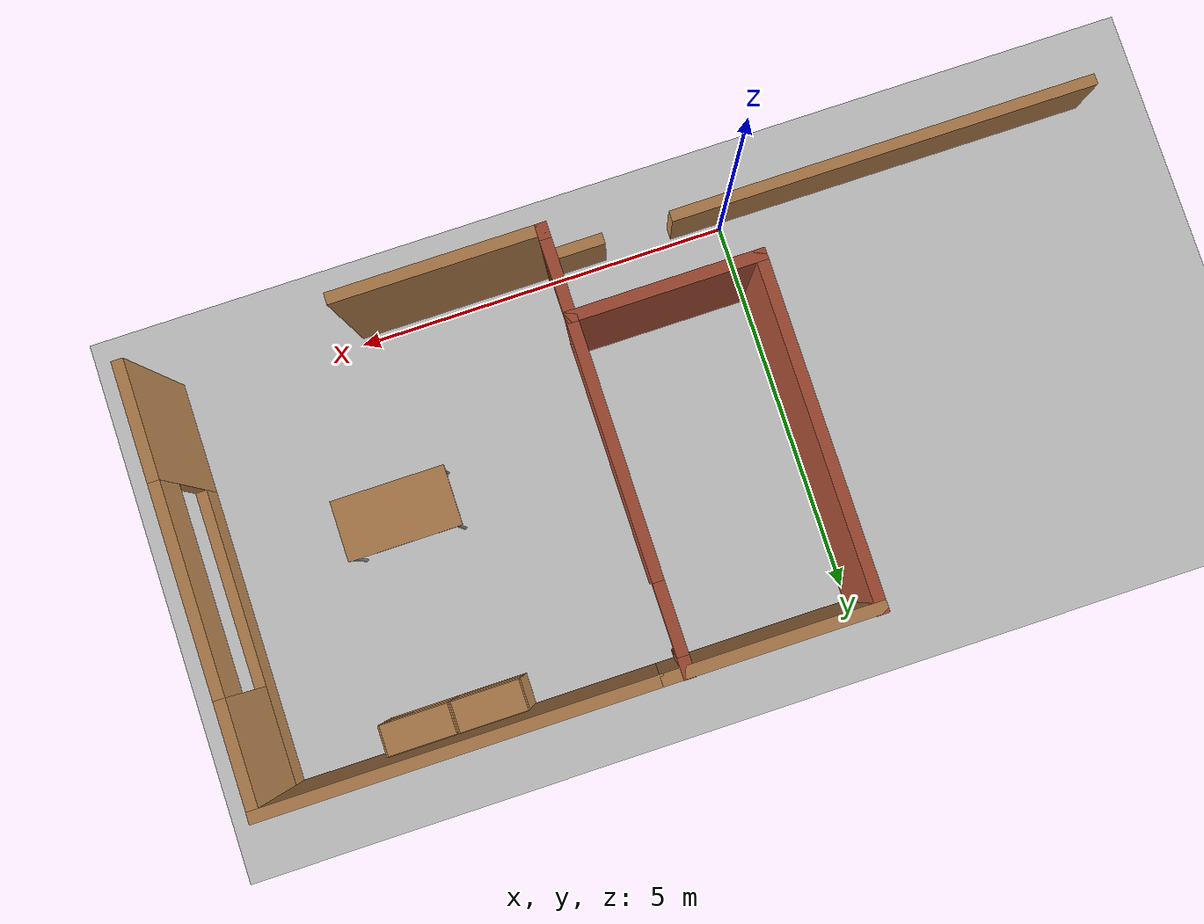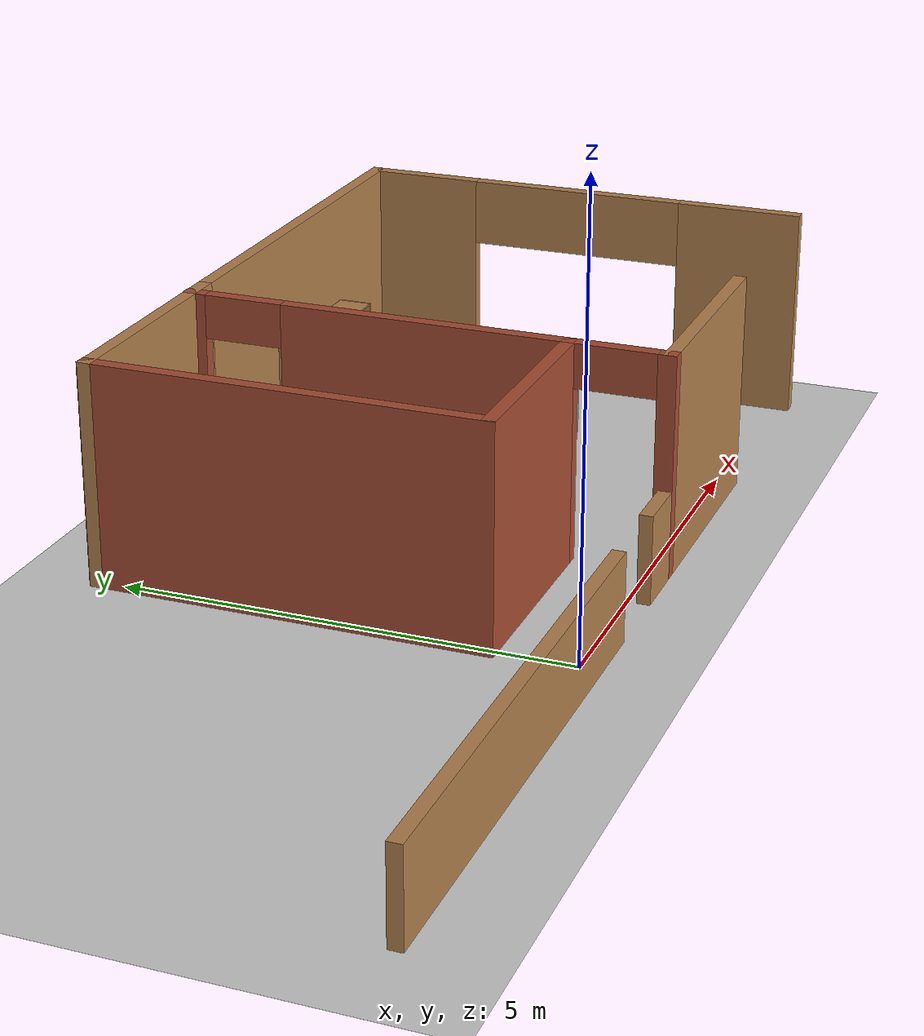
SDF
<sdf version="1.6">
 <world name="default">
  <model name="ground_plane">
   <static>1</static>
   <link name="link">
    <collision name="collision">
     <geometry><plane><normal>0 0 1</normal><size>100 100</size></plane></geometry>
     <surface>
      <contact><collide_bitmask>65535</collide_bitmask></contact>
      <friction><ode><mu>100</mu><mu2>50</mu2></ode></friction>
     </surface>
    </collision>
    <visual name="visual">
     <cast_shadows>0</cast_shadows>
     <geometry><plane><normal>0 0 1</normal><size>100 100</size></plane></geometry>
     <material>
      <script><uri>file://media/materials/scripts/gazebo.material</uri><name>Gazebo/Grey</name></script>
     </material>
    </visual>
   </link>
  </model>
  <model name="turtlebot3_house">
   <pose>0.006915 0.007382 0 0 -0 0</pose>
   <link name="Wall_101">
    <pose>-0.05 3.1 0 0 0 -1.5708</pose>
    <visual name="Wall_101_Visual">
     <pose>0 0 1.25 0 -0 0</pose>
     <geometry><box><size>4.5 0.15 2.5</size></box></geometry>
     <material>
      <script><uri>file://media/materials/scripts/gazebo.material</uri><name>Gazebo/Bricks</name></script>
      <ambient>1 1 1 1</ambient>
      <diffuse>1 1 1 1</diffuse>
      <specular>0.2 0.2 0.2 1</specular>
      <emissive>0 0 0 1</emissive>
     </material>
    </visual>
    <collision name="Wall_101_Collision">
     <pose>0 0 1.25 0 -0 0</pose>
     <geometry><box><size>4.5 0.15 2.5</size></box></geometry>
     <surface>
      <friction>
       <ode><mu>1</mu><mu2>1</mu2><fdir1>0 0 0</fdir1><slip1>0</slip1><slip2>0</slip2></ode>
       <torsional>
        <coefficient>1</coefficient>
        <patch_radius>0</patch_radius>
        <surface_radius>0</surface_radius>
        <use_patch_radius>1</use_patch_radius>
        <ode><slip>0</slip></ode>
       </torsional>
      </friction>
      <bounce><restitution_coefficient>0</restitution_coefficient><threshold>1e+06</threshold></bounce>
      <contact>
       <collide_without_contact>0</collide_without_contact>
       <collide_without_contact_bitmask>1</collide_without_contact_bitmask>
       <collide_bitmask>1</collide_bitmask>
       <ode>
        <soft_cfm>0</soft_cfm>
        <soft_erp>0.2</soft_erp>
        <kp>1e+13</kp>
        <kd>1</kd>
        <max_vel>0.01</max_vel>
        <min_depth>0</min_depth>
       </ode>
       <bullet>
        <split_impulse>1</split_impulse>
        <split_impulse_penetration_threshold>-0.01</split_impulse_penetration_threshold>
        <soft_cfm>0</soft_cfm>
        <soft_erp>0.2</soft_erp>
        <kp>1e+13</kp>
        <kd>1</kd>
       </bullet>
      </contact>
     </surface>
    </collision>
   </link>
   <link name="Wall_104">
    <pose>2.3 3.1 0 0 -0 1.5708</pose>
    <visual name="Wall_104_Visual_1">
     <pose>2.11625 0 1.25 0 -0 0</pose>
     <geometry><box><size>0.267504 0.15 2.5</size></box></geometry>
     <material>
      <script><uri>file://media/materials/scripts/gazebo.material</uri><name>Gazebo/Bricks</name></script>
      <ambient>1 1 1 1</ambient>
      <diffuse>1 1 1 1</diffuse>
      <specular>0.2 0.2 0.2 1</specular>
      <emissive>0 0 0 1</emissive>
     </material>
    </visual>
    <visual name="Wall_104_Visual_2">
     <pose>1.5325 0 2.25 0 -0 0</pose>
     <geometry><box><size>0.9 0.15 0.5</size></box></geometry>
     <material>
      <script><uri>file://media/materials/scripts/gazebo.material</uri><name>Gazebo/Bricks</name></script>
      <ambient>1 1 1 1</ambient>
      <diffuse>1 1 1 1</diffuse>
      <specular>0.2 0.2 0.2 1</specular>
      <emissive>0 0 0 1</emissive>
     </material>
    </visual>
    <visual name="Wall_104_Visual_0">
     <pose>-0.583752 0 1.25 0 -0 0</pose>
     <geometry><box><size>3.3325 0.15 2.5</size></box></geometry>
     <material>
      <script><uri>file://media/materials/scripts/gazebo.material</uri><name>Gazebo/Bricks</name></script>
      <ambient>1 1 1 1</ambient>
      <diffuse>1 1 1 1</diffuse>
      <specular>0.2 0.2 0.2 1</specular>
      <emissive>0 0 0 1</emissive>
     </material>
    </visual>
    <collision name="Wall_104_Collision_1">
     <pose>2.11625 0 1.25 0 -0 0</pose>
     <geometry><box><size>0.267504 0.15 2.5</size></box></geometry>
     <surface>
      <friction>
       <ode><mu>1</mu><mu2>1</mu2><fdir1>0 0 0</fdir1><slip1>0</slip1><slip2>0</slip2></ode>
       <torsional>
        <coefficient>1</coefficient>
        <patch_radius>0</patch_radius>
        <surface_radius>0</surface_radius>
        <use_patch_radius>1</use_patch_radius>
        <ode><slip>0</slip></ode>
       </torsional>
      </friction>
      <bounce><restitution_coefficient>0</restitution_coefficient><threshold>1e+06</threshold></bounce>
      <contact>
       <collide_without_contact>0</collide_without_contact>
       <collide_without_contact_bitmask>1</collide_without_contact_bitmask>
       <collide_bitmask>1</collide_bitmask>
       <ode>
        <soft_cfm>0</soft_cfm>
        <soft_erp>0.2</soft_erp>
        <kp>1e+13</kp>
        <kd>1</kd>
        <max_vel>0.01</max_vel>
        <min_depth>0</min_depth>
       </ode>
       <bullet>
        <split_impulse>1</split_impulse>
        <split_impulse_penetration_threshold>-0.01</split_impulse_penetration_threshold>
        <soft_cfm>0</soft_cfm>
        <soft_erp>0.2</soft_erp>
        <kp>1e+13</kp>
        <kd>1</kd>
       </bullet>
      </contact>
     </surface>
    </collision>
    <collision name="Wall_104_Collision_2">
     <pose>1.5325 0 2.25 0 -0 0</pose>
     <geometry><box><size>0.9 0.15 0.5</size></box></geometry>
     <surface>
      <friction>
       <ode><mu>1</mu><mu2>1</mu2><fdir1>0 0 0</fdir1><slip1>0</slip1><slip2>0</slip2></ode>
       <torsional>
        <coefficient>1</coefficient>
        <patch_radius>0</patch_radius>
        <surface_radius>0</surface_radius>
        <use_patch_radius>1</use_patch_radius>
        <ode><slip>0</slip></ode>
       </torsional>
      </friction>
      <bounce><restitution_coefficient>0</restitution_coefficient><threshold>1e+06</threshold></bounce>
      <contact>
       <collide_without_contact>0</collide_without_contact>
       <collide_without_contact_bitmask>1</collide_without_contact_bitmask>
       <collide_bitmask>1</collide_bitmask>
       <ode>
        <soft_cfm>0</soft_cfm>
        <soft_erp>0.2</soft_erp>
        <kp>1e+13</kp>
        <kd>1</kd>
        <max_vel>0.01</max_vel>
        <min_depth>0</min_depth>
       </ode>
       <bullet>
        <split_impulse>1</split_impulse>
        <split_impulse_penetration_threshold>-0.01</split_impulse_penetration_threshold>
        <soft_cfm>0</soft_cfm>
        <soft_erp>0.2</soft_erp>
        <kp>1e+13</kp>
        <kd>1</kd>
       </bullet>
      </contact>
     </surface>
    </collision>
    <collision name="Wall_104_Collision_0">
     <pose>-0.583752 0 1.25 0 -0 0</pose>
     <geometry><box><size>3.3325 0.15 2.5</size></box></geometry>
     <surface>
      <friction>
       <ode><mu>1</mu><mu2>1</mu2><fdir1>0 0 0</fdir1><slip1>0</slip1><slip2>0</slip2></ode>
       <torsional>
        <coefficient>1</coefficient>
        <patch_radius>0</patch_radius>
        <surface_radius>0</surface_radius>
        <use_patch_radius>1</use_patch_radius>
        <ode><slip>0</slip></ode>
       </torsional>
      </friction>
      <bounce><restitution_coefficient>0</restitution_coefficient><threshold>1e+06</threshold></bounce>
      <contact>
       <collide_without_contact>0</collide_without_contact>
       <collide_without_contact_bitmask>1</collide_without_contact_bitmask>
       <collide_bitmask>1</collide_bitmask>
       <ode>
        <soft_cfm>0</soft_cfm>
        <soft_erp>0.2</soft_erp>
        <kp>1e+13</kp>
        <kd>1</kd>
        <max_vel>0.01</max_vel>
        <min_depth>0</min_depth>
       </ode>
       <bullet>
        <split_impulse>1</split_impulse>
        <split_impulse_penetration_threshold>-0.01</split_impulse_penetration_threshold>
        <soft_cfm>0</soft_cfm>
        <soft_erp>0.2</soft_erp>
        <kp>1e+13</kp>
        <kd>1</kd>
       </bullet>
      </contact>
     </surface>
    </collision>
   </link>
   <link name="Wall_108">
    <pose>-1.37512 -0.17488 0 0 -0 0</pose>
    <visual name="Wall_108_Visual_0">
     <pose>-0.856324 0 0.5 0 -0 0</pose>
     <geometry><box><size>5.78735 0.15 1</size></box></geometry>
     <material>
      <script><uri>file://media/materials/scripts/gazebo.material</uri><name>Gazebo/Wood</name></script>
      <ambient>1 1 1 1</ambient>
      <diffuse>1 1 1 1</diffuse>
      <specular>0.2 0.2 0.2 1</specular>
      <emissive>0 0 0 1</emissive>
     </material>
    </visual>
    <visual name="Wall_108_Visual_1">
     <pose>3.34368 0 0.5 0 -0 0</pose>
     <geometry><box><size>0.812647 0.15 1</size></box></geometry>
     <material>
      <script><uri>file://media/materials/scripts/gazebo.material</uri><name>Gazebo/Wood</name></script>
      <ambient>1 1 1 1</ambient>
      <diffuse>1 1 1 1</diffuse>
      <specular>0.2 0.2 0.2 1</specular>
      <emissive>0 0 0 1</emissive>
     </material>
    </visual>
    <collision name="Wall_108_Collision_1">
     <pose>3.34368 0 0.5 0 -0 0</pose>
     <geometry><box><size>0.812647 0.15 1</size></box></geometry>
     <surface>
      <friction>
       <ode><mu>1</mu><mu2>1</mu2><fdir1>0 0 0</fdir1><slip1>0</slip1><slip2>0</slip2></ode>
       <torsional>
        <coefficient>1</coefficient>
        <patch_radius>0</patch_radius>
        <surface_radius>0</surface_radius>
        <use_patch_radius>1</use_patch_radius>
        <ode><slip>0</slip></ode>
       </torsional>
      </friction>
      <bounce><restitution_coefficient>0</restitution_coefficient><threshold>1e+06</threshold></bounce>
      <contact>
       <collide_without_contact>0</collide_without_contact>
       <collide_without_contact_bitmask>1</collide_without_contact_bitmask>
       <collide_bitmask>1</collide_bitmask>
       <ode>
        <soft_cfm>0</soft_cfm>
        <soft_erp>0.2</soft_erp>
        <kp>1e+13</kp>
        <kd>1</kd>
        <max_vel>0.01</max_vel>
        <min_depth>0</min_depth>
       </ode>
       <bullet>
        <split_impulse>1</split_impulse>
        <split_impulse_penetration_threshold>-0.01</split_impulse_penetration_threshold>
        <soft_cfm>0</soft_cfm>
        <soft_erp>0.2</soft_erp>
        <kp>1e+13</kp>
        <kd>1</kd>
       </bullet>
      </contact>
     </surface>
    </collision>
    <collision name="Wall_108_Collision_0">
     <pose>-0.856324 0 0.5 0 -0 0</pose>
     <geometry><box><size>5.78735 0.15 1</size></box></geometry>
     <surface>
      <friction>
       <ode><mu>1</mu><mu2>1</mu2><fdir1>0 0 0</fdir1><slip1>0</slip1><slip2>0</slip2></ode>
       <torsional>
        <coefficient>1</coefficient>
        <patch_radius>0</patch_radius>
        <surface_radius>0</surface_radius>
        <use_patch_radius>1</use_patch_radius>
        <ode><slip>0</slip></ode>
       </torsional>
      </friction>
      <bounce><restitution_coefficient>0</restitution_coefficient><threshold>1e+06</threshold></bounce>
      <contact>
       <collide_without_contact>0</collide_without_contact>
       <collide_without_contact_bitmask>1</collide_without_contact_bitmask>
       <collide_bitmask>1</collide_bitmask>
       <ode>
        <soft_cfm>0</soft_cfm>
        <soft_erp>0.2</soft_erp>
        <kp>1e+13</kp>
        <kd>1</kd>
        <max_vel>0.01</max_vel>
        <min_depth>0</min_depth>
       </ode>
       <bullet>
        <split_impulse>1</split_impulse>
        <split_impulse_penetration_threshold>-0.01</split_impulse_penetration_threshold>
        <soft_cfm>0</soft_cfm>
        <soft_erp>0.2</soft_erp>
        <kp>1e+13</kp>
        <kd>1</kd>
       </bullet>
      </contact>
     </surface>
    </collision>
   </link>
   <link name="Wall_81">
    <pose>5.07752 5.2688 0 0 -0 3.14159</pose>
    <visual name="Wall_81_Visual">
     <pose>0 0 1.25 0 -0 0</pose>
     <geometry><box><size>5 0.15 2.5</size></box></geometry>
     <material>
      <script><uri>file://media/materials/scripts/gazebo.material</uri><name>Gazebo/Wood</name></script>
      <ambient>1 1 1 1</ambient>
      <diffuse>1 1 1 1</diffuse>
      <specular>0.2 0.2 0.2 1</specular>
      <emissive>0 0 0 1</emissive>
     </material>
    </visual>
    <collision name="Wall_81_Collision">
     <pose>0 0 1.25 0 -0 0</pose>
     <geometry><box><size>5 0.15 2.5</size></box></geometry>
     <surface>
      <friction>
       <ode><mu>1</mu><mu2>1</mu2><fdir1>0 0 0</fdir1><slip1>0</slip1><slip2>0</slip2></ode>
       <torsional>
        <coefficient>1</coefficient>
        <patch_radius>0</patch_radius>
        <surface_radius>0</surface_radius>
        <use_patch_radius>1</use_patch_radius>
        <ode><slip>0</slip></ode>
       </torsional>
      </friction>
      <bounce><restitution_coefficient>0</restitution_coefficient><threshold>1e+06</threshold></bounce>
      <contact>
       <collide_without_contact>0</collide_without_contact>
       <collide_without_contact_bitmask>1</collide_without_contact_bitmask>
       <collide_bitmask>1</collide_bitmask>
       <ode>
        <soft_cfm>0</soft_cfm>
        <soft_erp>0.2</soft_erp>
        <kp>1e+13</kp>
        <kd>1</kd>
        <max_vel>0.01</max_vel>
        <min_depth>0</min_depth>
       </ode>
       <bullet>
        <split_impulse>1</split_impulse>
        <split_impulse_penetration_threshold>-0.01</split_impulse_penetration_threshold>
        <soft_cfm>0</soft_cfm>
        <soft_erp>0.2</soft_erp>
        <kp>1e+13</kp>
        <kd>1</kd>
       </bullet>
      </contact>
     </surface>
    </collision>
   </link>
   <link name="Wall_82">
    <pose>1.25 5.26876 0 0 -0 3.14159</pose>
    <visual name="Wall_82_Visual">
     <pose>0 0 1.25 0 -0 0</pose>
     <geometry><box><size>2.75 0.15 2.5</size></box></geometry>
     <material>
      <script><uri>file://media/materials/scripts/gazebo.material</uri><name>Gazebo/Wood</name></script>
      <ambient>1 1 1 1</ambient>
      <diffuse>1 1 1 1</diffuse>
      <specular>0.2 0.2 0.2 1</specular>
      <emissive>0 0 0 1</emissive>
     </material>
    </visual>
    <collision name="Wall_82_Collision">
     <pose>0 0 1.25 0 -0 0</pose>
     <geometry><box><size>2.75 0.15 2.5</size></box></geometry>
     <surface>
      <friction>
       <ode><mu>1</mu><mu2>1</mu2><fdir1>0 0 0</fdir1><slip1>0</slip1><slip2>0</slip2></ode>
       <torsional>
        <coefficient>1</coefficient>
        <patch_radius>0</patch_radius>
        <surface_radius>0</surface_radius>
        <use_patch_radius>1</use_patch_radius>
        <ode><slip>0</slip></ode>
       </torsional>
      </friction>
      <bounce><restitution_coefficient>0</restitution_coefficient><threshold>1e+06</threshold></bounce>
      <contact>
       <collide_without_contact>0</collide_without_contact>
       <collide_without_contact_bitmask>1</collide_without_contact_bitmask>
       <collide_bitmask>1</collide_bitmask>
       <ode>
        <soft_cfm>0</soft_cfm>
        <soft_erp>0.2</soft_erp>
        <kp>1e+13</kp>
        <kd>1</kd>
        <max_vel>0.01</max_vel>
        <min_depth>0</min_depth>
       </ode>
       <bullet>
        <split_impulse>1</split_impulse>
        <split_impulse_penetration_threshold>-0.01</split_impulse_penetration_threshold>
        <soft_cfm>0</soft_cfm>
        <soft_erp>0.2</soft_erp>
        <kp>1e+13</kp>
        <kd>1</kd>
       </bullet>
      </contact>
     </surface>
    </collision>
   </link>
   <link name="Wall_90">
    <pose>1.125 0.925 0 0 -0 0</pose>
    <visual name="Wall_90_Visual">
     <pose>0 0 1.25 0 -0 0</pose>
     <geometry><box><size>2.5 0.15 2.5</size></box></geometry>
     <material>
      <script><uri>file://media/materials/scripts/gazebo.material</uri><name>Gazebo/Bricks</name></script>
      <ambient>1 1 1 1</ambient>
      <diffuse>1 1 1 1</diffuse>
      <specular>0.2 0.2 0.2 1</specular>
      <emissive>0 0 0 1</emissive>
     </material>
    </visual>
    <collision name="Wall_90_Collision">
     <pose>0 0 1.25 0 -0 0</pose>
     <geometry><box><size>2.5 0.15 2.5</size></box></geometry>
     <surface>
      <friction>
       <ode><mu>1</mu><mu2>1</mu2><fdir1>0 0 0</fdir1><slip1>0</slip1><slip2>0</slip2></ode>
       <torsional>
        <coefficient>1</coefficient>
        <patch_radius>0</patch_radius>
        <surface_radius>0</surface_radius>
        <use_patch_radius>1</use_patch_radius>
        <ode><slip>0</slip></ode>
       </torsional>
      </friction>
      <bounce><restitution_coefficient>0</restitution_coefficient><threshold>1e+06</threshold></bounce>
      <contact>
       <collide_without_contact>0</collide_without_contact>
       <collide_without_contact_bitmask>1</collide_without_contact_bitmask>
       <collide_bitmask>1</collide_bitmask>
       <ode>
        <soft_cfm>0</soft_cfm>
        <soft_erp>0.2</soft_erp>
        <kp>1e+13</kp>
        <kd>1</kd>
        <max_vel>0.01</max_vel>
        <min_depth>0</min_depth>
       </ode>
       <bullet>
        <split_impulse>1</split_impulse>
        <split_impulse_penetration_threshold>-0.01</split_impulse_penetration_threshold>
        <soft_cfm>0</soft_cfm>
        <soft_erp>0.2</soft_erp>
        <kp>1e+13</kp>
        <kd>1</kd>
       </bullet>
      </contact>
     </surface>
    </collision>
   </link>
   <link name="Wall_91">
    <pose>2.29994 0.37506 0 0 0 -1.57091</pose>
    <visual name="Wall_91_Visual_0">
     <pose>-0.551501 0 1.25 0 -0 0</pose>
     <geometry><box><size>0.146998 0.15 2.5</size></box></geometry>
     <material>
      <script><uri>file://media/materials/scripts/gazebo.material</uri><name>Gazebo/Bricks</name></script>
      <ambient>1 1 1 1</ambient>
      <diffuse>1 1 1 1</diffuse>
      <specular>0.2 0.2 0.2 1</specular>
      <emissive>0 0 0 1</emissive>
     </material>
    </visual>
    <visual name="Wall_91_Visual_2">
     <pose>-0.028002 0 2.25 0 -0 0</pose>
     <geometry><box><size>0.9 0.15 0.5</size></box></geometry>
     <material>
      <script><uri>file://media/materials/scripts/gazebo.material</uri><name>Gazebo/Bricks</name></script>
      <ambient>1 1 1 1</ambient>
      <diffuse>1 1 1 1</diffuse>
      <specular>0.2 0.2 0.2 1</specular>
      <emissive>0 0 0 1</emissive>
     </material>
    </visual>
    <visual name="Wall_91_Visual_1">
     <pose>0.523499 0 1.25 0 -0 0</pose>
     <geometry><box><size>0.203002 0.15 2.5</size></box></geometry>
     <material>
      <script><uri>file://media/materials/scripts/gazebo.material</uri><name>Gazebo/Bricks</name></script>
      <ambient>1 1 1 1</ambient>
      <diffuse>1 1 1 1</diffuse>
      <specular>0.2 0.2 0.2 1</specular>
      <emissive>0 0 0 1</emissive>
     </material>
    </visual>
    <collision name="Wall_91_Collision_0">
     <pose>-0.551501 0 1.25 0 -0 0</pose>
     <geometry><box><size>0.146998 0.15 2.5</size></box></geometry>
     <surface>
      <friction>
       <ode><mu>1</mu><mu2>1</mu2><fdir1>0 0 0</fdir1><slip1>0</slip1><slip2>0</slip2></ode>
       <torsional>
        <coefficient>1</coefficient>
        <patch_radius>0</patch_radius>
        <surface_radius>0</surface_radius>
        <use_patch_radius>1</use_patch_radius>
        <ode><slip>0</slip></ode>
       </torsional>
      </friction>
      <bounce><restitution_coefficient>0</restitution_coefficient><threshold>1e+06</threshold></bounce>
      <contact>
       <collide_without_contact>0</collide_without_contact>
       <collide_without_contact_bitmask>1</collide_without_contact_bitmask>
       <collide_bitmask>1</collide_bitmask>
       <ode>
        <soft_cfm>0</soft_cfm>
        <soft_erp>0.2</soft_erp>
        <kp>1e+13</kp>
        <kd>1</kd>
        <max_vel>0.01</max_vel>
        <min_depth>0</min_depth>
       </ode>
       <bullet>
        <split_impulse>1</split_impulse>
        <split_impulse_penetration_threshold>-0.01</split_impulse_penetration_threshold>
        <soft_cfm>0</soft_cfm>
        <soft_erp>0.2</soft_erp>
        <kp>1e+13</kp>
        <kd>1</kd>
       </bullet>
      </contact>
     </surface>
    </collision>
    <collision name="Wall_91_Collision_1">
     <pose>0.523499 0 1.25 0 -0 0</pose>
     <geometry><box><size>0.203002 0.15 2.5</size></box></geometry>
     <surface>
      <friction>
       <ode><mu>1</mu><mu2>1</mu2><fdir1>0 0 0</fdir1><slip1>0</slip1><slip2>0</slip2></ode>
       <torsional>
        <coefficient>1</coefficient>
        <patch_radius>0</patch_radius>
        <surface_radius>0</surface_radius>
        <use_patch_radius>1</use_patch_radius>
        <ode><slip>0</slip></ode>
       </torsional>
      </friction>
      <bounce><restitution_coefficient>0</restitution_coefficient><threshold>1e+06</threshold></bounce>
      <contact>
       <collide_without_contact>0</collide_without_contact>
       <collide_without_contact_bitmask>1</collide_without_contact_bitmask>
       <collide_bitmask>1</collide_bitmask>
       <ode>
        <soft_cfm>0</soft_cfm>
        <soft_erp>0.2</soft_erp>
        <kp>1e+13</kp>
        <kd>1</kd>
        <max_vel>0.01</max_vel>
        <min_depth>0</min_depth>
       </ode>
       <bullet>
        <split_impulse>1</split_impulse>
        <split_impulse_penetration_threshold>-0.01</split_impulse_penetration_threshold>
        <soft_cfm>0</soft_cfm>
        <soft_erp>0.2</soft_erp>
        <kp>1e+13</kp>
        <kd>1</kd>
       </bullet>
      </contact>
     </surface>
    </collision>
    <collision name="Wall_91_Collision_2">
     <pose>-0.028002 0 2.25 0 -0 0</pose>
     <geometry><box><size>0.9 0.15 0.5</size></box></geometry>
     <surface>
      <friction>
       <ode><mu>1</mu><mu2>1</mu2><fdir1>0 0 0</fdir1><slip1>0</slip1><slip2>0</slip2></ode>
       <torsional>
        <coefficient>1</coefficient>
        <patch_radius>0</patch_radius>
        <surface_radius>0</surface_radius>
        <use_patch_radius>1</use_patch_radius>
        <ode><slip>0</slip></ode>
       </torsional>
      </friction>
      <bounce><restitution_coefficient>0</restitution_coefficient><threshold>1e+06</threshold></bounce>
      <contact>
       <collide_without_contact>0</collide_without_contact>
       <collide_without_contact_bitmask>1</collide_without_contact_bitmask>
       <collide_bitmask>1</collide_bitmask>
       <ode>
        <soft_cfm>0</soft_cfm>
        <soft_erp>0.2</soft_erp>
        <kp>1e+13</kp>
        <kd>1</kd>
        <max_vel>0.01</max_vel>
        <min_depth>0</min_depth>
       </ode>
       <bullet>
        <split_impulse>1</split_impulse>
        <split_impulse_penetration_threshold>-0.01</split_impulse_penetration_threshold>
        <soft_cfm>0</soft_cfm>
        <soft_erp>0.2</soft_erp>
        <kp>1e+13</kp>
        <kd>1</kd>
       </bullet>
      </contact>
     </surface>
    </collision>
   </link>
   <link name="Wall_92">
    <pose>3.59994 -0.17494 0 0 0 -4.6e-05</pose>
    <visual name="Wall_92_Visual">
     <pose>0 0 1.25 0 -0 0</pose>
     <geometry><box><size>2.75 0.15 2.5</size></box></geometry>
     <material>
      <script><uri>file://media/materials/scripts/gazebo.material</uri><name>Gazebo/Wood</name></script>
      <ambient>1 1 1 1</ambient>
      <diffuse>1 1 1 1</diffuse>
      <specular>0.2 0.2 0.2 1</specular>
      <emissive>0 0 0 1</emissive>
     </material>
    </visual>
    <collision name="Wall_92_Collision">
     <pose>0 0 1.25 0 -0 0</pose>
     <geometry><box><size>2.75 0.15 2.5</size></box></geometry>
     <surface>
      <friction>
       <ode><mu>1</mu><mu2>1</mu2><fdir1>0 0 0</fdir1><slip1>0</slip1><slip2>0</slip2></ode>
       <torsional>
        <coefficient>1</coefficient>
        <patch_radius>0</patch_radius>
        <surface_radius>0</surface_radius>
        <use_patch_radius>1</use_patch_radius>
        <ode><slip>0</slip></ode>
       </torsional>
      </friction>
      <bounce><restitution_coefficient>0</restitution_coefficient><threshold>1e+06</threshold></bounce>
      <contact>
       <collide_without_contact>0</collide_without_contact>
       <collide_without_contact_bitmask>1</collide_without_contact_bitmask>
       <collide_bitmask>1</collide_bitmask>
       <ode>
        <soft_cfm>0</soft_cfm>
        <soft_erp>0.2</soft_erp>
        <kp>1e+13</kp>
        <kd>1</kd>
        <max_vel>0.01</max_vel>
        <min_depth>0</min_depth>
       </ode>
       <bullet>
        <split_impulse>1</split_impulse>
        <split_impulse_penetration_threshold>-0.01</split_impulse_penetration_threshold>
        <soft_cfm>0</soft_cfm>
        <soft_erp>0.2</soft_erp>
        <kp>1e+13</kp>
        <kd>1</kd>
       </bullet>
      </contact>
     </surface>
    </collision>
   </link>
   <link name="Wall_96">
    <pose>7.5 2.5 0 0 -0 1.5708</pose>
    <visual name="Wall_96_Visual_1">
     <pose>0.75174 0 0.25 0 -0 0</pose>
     <geometry><box><size>3.99652 0.15 0.5</size></box></geometry>
     <material>
      <script><uri>file://media/materials/scripts/gazebo.material</uri><name>Gazebo/Wood</name></script>
      <ambient>1 1 1 1</ambient>
      <diffuse>1 1 1 1</diffuse>
      <specular>0.2 0.2 0.2 1</specular>
      <emissive>0 0 0 1</emissive>
     </material>
    </visual>
    <visual name="Wall_96_Visual_2">
     <pose>2.06924 0 1.5 0 -0 0</pose>
     <geometry><box><size>1.36152 0.15 2</size></box></geometry>
     <material>
      <script><uri>file://media/materials/scripts/gazebo.material</uri><name>Gazebo/Wood</name></script>
      <ambient>1 1 1 1</ambient>
      <diffuse>1 1 1 1</diffuse>
      <specular>0.2 0.2 0.2 1</specular>
      <emissive>0 0 0 1</emissive>
     </material>
    </visual>
    <visual name="Wall_96_Visual_3">
     <pose>0.070981 0 2.1 0 -0 0</pose>
     <geometry><box><size>2.635 0.15 0.8</size></box></geometry>
     <material>
      <script><uri>file://media/materials/scripts/gazebo.material</uri><name>Gazebo/Wood</name></script>
      <ambient>1 1 1 1</ambient>
      <diffuse>1 1 1 1</diffuse>
      <specular>0.2 0.2 0.2 1</specular>
      <emissive>0 0 0 1</emissive>
     </material>
    </visual>
    <visual name="Wall_96_Visual_0">
     <pose>-1.99826 0 1.25 0 -0 0</pose>
     <geometry><box><size>1.50348 0.15 2.5</size></box></geometry>
     <material>
      <script><uri>file://media/materials/scripts/gazebo.material</uri><name>Gazebo/Wood</name></script>
      <ambient>1 1 1 1</ambient>
      <diffuse>1 1 1 1</diffuse>
      <specular>0.2 0.2 0.2 1</specular>
      <emissive>0 0 0 1</emissive>
     </material>
    </visual>
    <collision name="Wall_96_Collision_2">
     <pose>2.06924 0 1.5 0 -0 0</pose>
     <geometry><box><size>1.36152 0.15 2</size></box></geometry>
     <surface>
      <friction>
       <ode><mu>1</mu><mu2>1</mu2><fdir1>0 0 0</fdir1><slip1>0</slip1><slip2>0</slip2></ode>
       <torsional>
        <coefficient>1</coefficient>
        <patch_radius>0</patch_radius>
        <surface_radius>0</surface_radius>
        <use_patch_radius>1</use_patch_radius>
        <ode><slip>0</slip></ode>
       </torsional>
      </friction>
      <bounce><restitution_coefficient>0</restitution_coefficient><threshold>1e+06</threshold></bounce>
      <contact>
       <collide_without_contact>0</collide_without_contact>
       <collide_without_contact_bitmask>1</collide_without_contact_bitmask>
       <collide_bitmask>1</collide_bitmask>
       <ode>
        <soft_cfm>0</soft_cfm>
        <soft_erp>0.2</soft_erp>
        <kp>1e+13</kp>
        <kd>1</kd>
        <max_vel>0.01</max_vel>
        <min_depth>0</min_depth>
       </ode>
       <bullet>
        <split_impulse>1</split_impulse>
        <split_impulse_penetration_threshold>-0.01</split_impulse_penetration_threshold>
        <soft_cfm>0</soft_cfm>
        <soft_erp>0.2</soft_erp>
        <kp>1e+13</kp>
        <kd>1</kd>
       </bullet>
      </contact>
     </surface>
    </collision>
    <collision name="Wall_96_Collision_0">
     <pose>-1.99826 0 1.25 0 -0 0</pose>
     <geometry><box><size>1.50348 0.15 2.5</size></box></geometry>
     <surface>
      <friction>
       <ode><mu>1</mu><mu2>1</mu2><fdir1>0 0 0</fdir1><slip1>0</slip1><slip2>0</slip2></ode>
       <torsional>
        <coefficient>1</coefficient>
        <patch_radius>0</patch_radius>
        <surface_radius>0</surface_radius>
        <use_patch_radius>1</use_patch_radius>
        <ode><slip>0</slip></ode>
       </torsional>
      </friction>
      <bounce><restitution_coefficient>0</restitution_coefficient><threshold>1e+06</threshold></bounce>
      <contact>
       <collide_without_contact>0</collide_without_contact>
       <collide_without_contact_bitmask>1</collide_without_contact_bitmask>
       <collide_bitmask>1</collide_bitmask>
       <ode>
        <soft_cfm>0</soft_cfm>
        <soft_erp>0.2</soft_erp>
        <kp>1e+13</kp>
        <kd>1</kd>
        <max_vel>0.01</max_vel>
        <min_depth>0</min_depth>
       </ode>
       <bullet>
        <split_impulse>1</split_impulse>
        <split_impulse_penetration_threshold>-0.01</split_impulse_penetration_threshold>
        <soft_cfm>0</soft_cfm>
        <soft_erp>0.2</soft_erp>
        <kp>1e+13</kp>
        <kd>1</kd>
       </bullet>
      </contact>
     </surface>
    </collision>
    <collision name="Wall_96_Collision_3">
     <pose>0.070981 0 2.1 0 -0 0</pose>
     <geometry><box><size>2.635 0.15 0.8</size></box></geometry>
     <surface>
      <friction>
       <ode><mu>1</mu><mu2>1</mu2><fdir1>0 0 0</fdir1><slip1>0</slip1><slip2>0</slip2></ode>
       <torsional>
        <coefficient>1</coefficient>
        <patch_radius>0</patch_radius>
        <surface_radius>0</surface_radius>
        <use_patch_radius>1</use_patch_radius>
        <ode><slip>0</slip></ode>
       </torsional>
      </friction>
      <bounce><restitution_coefficient>0</restitution_coefficient><threshold>1e+06</threshold></bounce>
      <contact>
       <collide_without_contact>0</collide_without_contact>
       <collide_without_contact_bitmask>1</collide_without_contact_bitmask>
       <collide_bitmask>1</collide_bitmask>
       <ode>
        <soft_cfm>0</soft_cfm>
        <soft_erp>0.2</soft_erp>
        <kp>1e+13</kp>
        <kd>1</kd>
        <max_vel>0.01</max_vel>
        <min_depth>0</min_depth>
       </ode>
       <bullet>
        <split_impulse>1</split_impulse>
        <split_impulse_penetration_threshold>-0.01</split_impulse_penetration_threshold>
        <soft_cfm>0</soft_cfm>
        <soft_erp>0.2</soft_erp>
        <kp>1e+13</kp>
        <kd>1</kd>
       </bullet>
      </contact>
     </surface>
    </collision>
    <collision name="Wall_96_Collision_1">
     <pose>0.75174 0 0.25 0 -0 0</pose>
     <geometry><box><size>3.99652 0.15 0.5</size></box></geometry>
     <surface>
      <friction>
       <ode><mu>1</mu><mu2>1</mu2><fdir1>0 0 0</fdir1><slip1>0</slip1><slip2>0</slip2></ode>
       <torsional>
        <coefficient>1</coefficient>
        <patch_radius>0</patch_radius>
        <surface_radius>0</surface_radius>
        <use_patch_radius>1</use_patch_radius>
        <ode><slip>0</slip></ode>
       </torsional>
      </friction>
      <bounce><restitution_coefficient>0</restitution_coefficient><threshold>1e+06</threshold></bounce>
      <contact>
       <collide_without_contact>0</collide_without_contact>
       <collide_without_contact_bitmask>1</collide_without_contact_bitmask>
       <collide_bitmask>1</collide_bitmask>
       <ode>
        <soft_cfm>0</soft_cfm>
        <soft_erp>0.2</soft_erp>
        <kp>1e+13</kp>
        <kd>1</kd>
        <max_vel>0.01</max_vel>
        <min_depth>0</min_depth>
       </ode>
       <bullet>
        <split_impulse>1</split_impulse>
        <split_impulse_penetration_threshold>-0.01</split_impulse_penetration_threshold>
        <soft_cfm>0</soft_cfm>
        <soft_erp>0.2</soft_erp>
        <kp>1e+13</kp>
        <kd>1</kd>
       </bullet>
      </contact>
     </surface>
    </collision>
   </link>
   <model name="bookshelf_0">
    <static>1</static>
    <link name="link">
     <inertial><mass>1</mass></inertial>
     <collision name="back">
      <pose>0 0.005 0.6 0 -0 0</pose>
      <geometry><box><size>0.9 0.01 1.2</size></box></geometry>
     </collision>
     <visual name="visual1">
      <pose>0 0.005 0.6 0 -0 0</pose>
      <geometry><box><size>0.9 0.01 1.2</size></box></geometry>
      <material>
       <script><uri>file://media/materials/scripts/gazebo.material</uri><name>Gazebo/Wood</name></script>
      </material>
     </visual>
     <collision name="left_side">
      <pose>0.45 -0.195 0.6 0 -0 0</pose>
      <geometry><box><size>0.02 0.4 1.2</size></box></geometry>
     </collision>
     <visual name="visual2">
      <pose>0.45 -0.195 0.6 0 -0 0</pose>
      <geometry><box><size>0.02 0.4 1.2</size></box></geometry>
      <material>
       <script><uri>file://media/materials/scripts/gazebo.material</uri><name>Gazebo/Wood</name></script>
      </material>
     </visual>
     <collision name="right_side">
      <pose>-0.45 -0.195 0.6 0 -0 0</pose>
      <geometry><box><size>0.02 0.4 1.2</size></box></geometry>
     </collision>
     <visual name="visual3">
      <pose>-0.45 -0.195 0.6 0 -0 0</pose>
      <geometry><box><size>0.02 0.4 1.2</size></box></geometry>
      <material>
       <script><uri>file://media/materials/scripts/gazebo.material</uri><name>Gazebo/Wood</name></script>
      </material>
     </visual>
     <collision name="bottom">
      <pose>0 -0.195 0.03 0 -0 0</pose>
      <geometry><box><size>0.88 0.4 0.06</size></box></geometry>
     </collision>
     <visual name="visual4">
      <pose>0 -0.195 0.03 0 -0 0</pose>
      <geometry><box><size>0.88 0.4 0.06</size></box></geometry>
      <material>
       <script><uri>file://media/materials/scripts/gazebo.material</uri><name>Gazebo/Wood</name></script>
      </material>
     </visual>
     <collision name="top">
      <pose>0 -0.195 1.19 0 -0 0</pose>
      <geometry><box><size>0.88 0.4 0.02</size></box></geometry>
     </collision>
     <visual name="visual5">
      <pose>0 -0.195 1.19 0 -0 0</pose>
      <geometry><box><size>0.88 0.4 0.02</size></box></geometry>
      <material>
       <script><uri>file://media/materials/scripts/gazebo.material</uri><name>Gazebo/Wood</name></script>
      </material>
     </visual>
     <collision name="low_shelf">
      <pose>0 -0.195 0.43 0 -0 0</pose>
      <geometry><box><size>0.88 0.4 0.02</size></box></geometry>
     </collision>
     <visual name="visual6">
      <pose>0 -0.195 0.43 0 -0 0</pose>
      <geometry><box><size>0.88 0.4 0.02</size></box></geometry>
      <material>
       <script><uri>file://media/materials/scripts/gazebo.material</uri><name>Gazebo/Wood</name></script>
      </material>
     </visual>
     <collision name="high_shelf">
      <pose>0 -0.195 0.8 0 -0 0</pose>
      <geometry><box><size>0.88 0.4 0.02</size></box></geometry>
     </collision>
     <visual name="visual7">
      <pose>0 -0.195 0.8 0 -0 0</pose>
      <geometry><box><size>0.88 0.4 0.02</size></box></geometry>
      <material>
       <script><uri>file://media/materials/scripts/gazebo.material</uri><name>Gazebo/Wood</name></script>
      </material>
     </visual>
    </link>
    <pose>4.72359 5.17921 0 0 -0 0</pose>
   </model>
   <model name="bookshelf_1">
    <static>1</static>
    <link name="link">
     <inertial><mass>1</mass></inertial>
     <collision name="back">
      <pose>0 0.005 0.6 0 -0 0</pose>
      <geometry><box><size>0.9 0.01 1.2</size></box></geometry>
     </collision>
     <visual name="visual1">
      <pose>0 0.005 0.6 0 -0 0</pose>
      <geometry><box><size>0.9 0.01 1.2</size></box></geometry>
      <material>
       <script><uri>file://media/materials/scripts/gazebo.material</uri><name>Gazebo/Wood</name></script>
      </material>
     </visual>
     <collision name="left_side">
      <pose>0.45 -0.195 0.6 0 -0 0</pose>
      <geometry><box><size>0.02 0.4 1.2</size></box></geometry>
     </collision>
     <visual name="visual2">
      <pose>0.45 -0.195 0.6 0 -0 0</pose>
      <geometry><box><size>0.02 0.4 1.2</size></box></geometry>
      <material>
       <script><uri>file://media/materials/scripts/gazebo.material</uri><name>Gazebo/Wood</name></script>
      </material>
     </visual>
     <collision name="right_side">
      <pose>-0.45 -0.195 0.6 0 -0 0</pose>
      <geometry><box><size>0.02 0.4 1.2</size></box></geometry>
     </collision>
     <visual name="visual3">
      <pose>-0.45 -0.195 0.6 0 -0 0</pose>
      <geometry><box><size>0.02 0.4 1.2</size></box></geometry>
      <material>
       <script><uri>file://media/materials/scripts/gazebo.material</uri><name>Gazebo/Wood</name></script>
      </material>
     </visual>
     <collision name="bottom">
      <pose>0 -0.195 0.03 0 -0 0</pose>
      <geometry><box><size>0.88 0.4 0.06</size></box></geometry>
     </collision>
     <visual name="visual4">
      <pose>0 -0.195 0.03 0 -0 0</pose>
      <geometry><box><size>0.88 0.4 0.06</size></box></geometry>
      <material>
       <script><uri>file://media/materials/scripts/gazebo.material</uri><name>Gazebo/Wood</name></script>
      </material>
     </visual>
     <collision name="top">
      <pose>0 -0.195 1.19 0 -0 0</pose>
      <geometry><box><size>0.88 0.4 0.02</size></box></geometry>
     </collision>
     <visual name="visual5">
      <pose>0 -0.195 1.19 0 -0 0</pose>
      <geometry><box><size>0.88 0.4 0.02</size></box></geometry>
      <material>
       <script><uri>file://media/materials/scripts/gazebo.material</uri><name>Gazebo/Wood</name></script>
      </material>
     </visual>
     <collision name="low_shelf">
      <pose>0 -0.195 0.43 0 -0 0</pose>
      <geometry><box><size>0.88 0.4 0.02</size></box></geometry>
     </collision>
     <visual name="visual6">
      <pose>0 -0.195 0.43 0 -0 0</pose>
      <geometry><box><size>0.88 0.4 0.02</size></box></geometry>
      <material>
       <script><uri>file://media/materials/scripts/gazebo.material</uri><name>Gazebo/Wood</name></script>
      </material>
     </visual>
     <collision name="high_shelf">
      <pose>0 -0.195 0.8 0 -0 0</pose>
      <geometry><box><size>0.88 0.4 0.02</size></box></geometry>
     </collision>
     <visual name="visual7">
      <pose>0 -0.195 0.8 0 -0 0</pose>
      <geometry><box><size>0.88 0.4 0.02</size></box></geometry>
      <material>
       <script><uri>file://media/materials/scripts/gazebo.material</uri><name>Gazebo/Wood</name></script>
      </material>
     </visual>
    </link>
    <pose>5.64449 5.17912 0 0 -0 0</pose>
   </model>
   <static>1</static>
  </model>
  <model name="table_1">
   <static>1</static>
   <link name="link">
    <collision name="surface">
     <pose>0 0 1 0 -0 0</pose>
     <geometry><box><size>1.5 0.8 0.03</size></box></geometry>
     <surface><friction><ode><mu>0.6</mu><mu2>0.6</mu2></ode></friction></surface>
    </collision>
    <visual name="visual1">
     <pose>0 0 1 0 -0 0</pose>
     <geometry><box><size>1.5 0.8 0.03</size></box></geometry>
     <material>
      <script><uri>file://media/materials/scripts/gazebo.material</uri><name>Gazebo/Wood</name></script>
     </material>
    </visual>
    <collision name="front_left_leg">
     <pose>0.68 0.38 0.5 0 -0 0</pose>
     <geometry><cylinder><radius>0.02</radius><length>1</length></cylinder></geometry>
    </collision>
    <visual name="front_left_leg">
     <pose>0.68 0.38 0.5 0 -0 0</pose>
     <geometry><cylinder><radius>0.02</radius><length>1</length></cylinder></geometry>
     <material>
      <script><uri>file://media/materials/scripts/gazebo.material</uri><name>Gazebo/Grey</name></script>
     </material>
    </visual>
    <collision name="front_right_leg">
     <pose>0.68 -0.38 0.5 0 -0 0</pose>
     <geometry><cylinder><radius>0.02</radius><length>1</length></cylinder></geometry>
    </collision>
    <visual name="front_right_leg">
     <pose>0.68 -0.38 0.5 0 -0 0</pose>
     <geometry><cylinder><radius>0.02</radius><length>1</length></cylinder></geometry>
     <material>
      <script><uri>file://media/materials/scripts/gazebo.material</uri><name>Gazebo/Grey</name></script>
     </material>
    </visual>
    <collision name="back_right_leg">
     <pose>-0.68 -0.38 0.5 0 -0 0</pose>
     <geometry><cylinder><radius>0.02</radius><length>1</length></cylinder></geometry>
    </collision>
    <visual name="back_right_leg">
     <pose>-0.68 -0.38 0.5 0 -0 0</pose>
     <geometry><cylinder><radius>0.02</radius><length>1</length></cylinder></geometry>
     <material>
      <script><uri>file://media/materials/scripts/gazebo.material</uri><name>Gazebo/Grey</name></script>
     </material>
    </visual>
    <collision name="back_left_leg">
     <pose>-0.68 0.38 0.5 0 -0 0</pose>
     <geometry><cylinder><radius>0.02</radius><length>1</length></cylinder></geometry>
    </collision>
    <visual name="back_left_leg">
     <pose>-0.68 0.38 0.5 0 -0 0</pose>
     <geometry><cylinder><radius>0.02</radius><length>1</length></cylinder></geometry>
     <material>
      <script><uri>file://media/materials/scripts/gazebo.material</uri><name>Gazebo/Grey</name></script>
     </material>
    </visual>
   </link>
   <pose>5.13444 2.35789 0 0 -0 0</pose>
  </model>
 </world>
</sdf>
